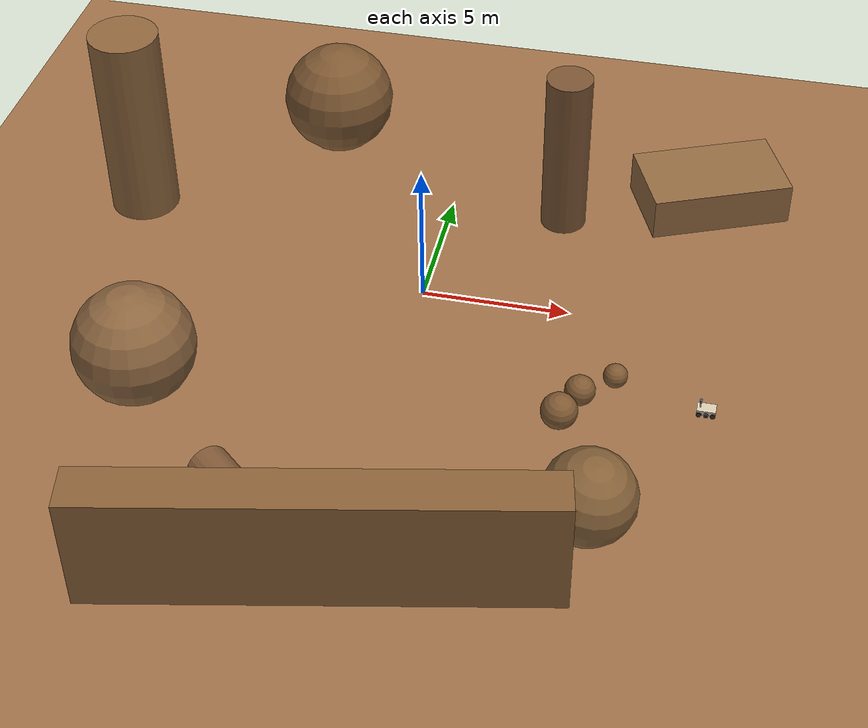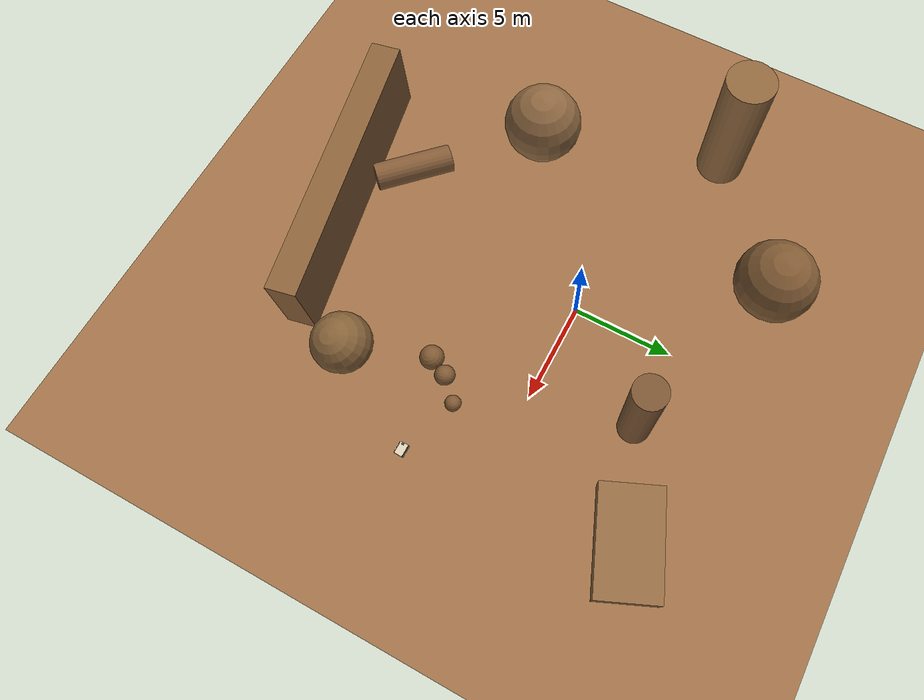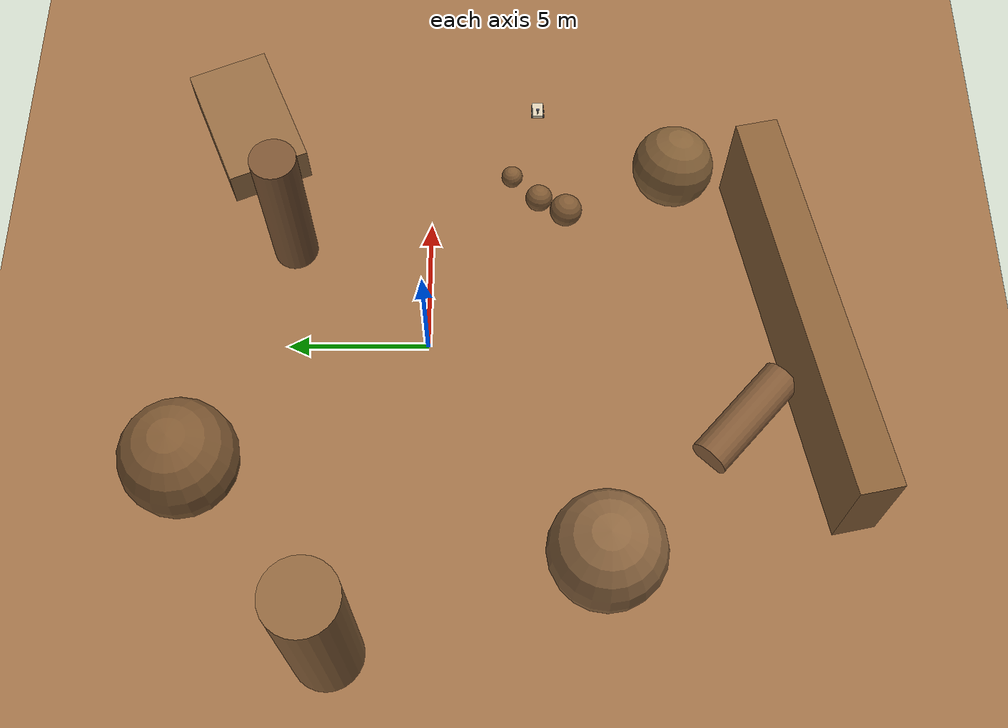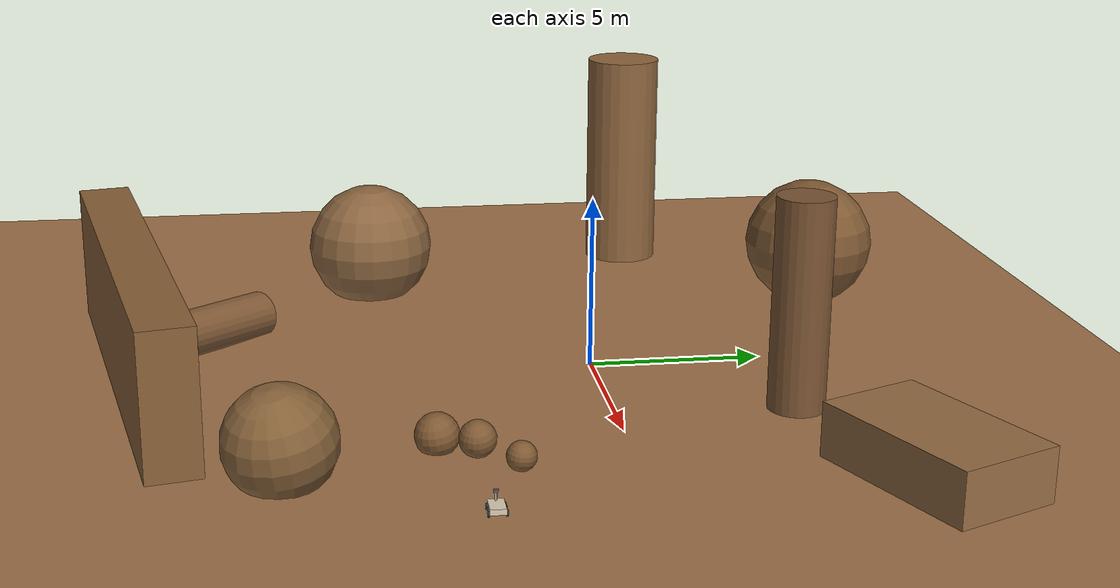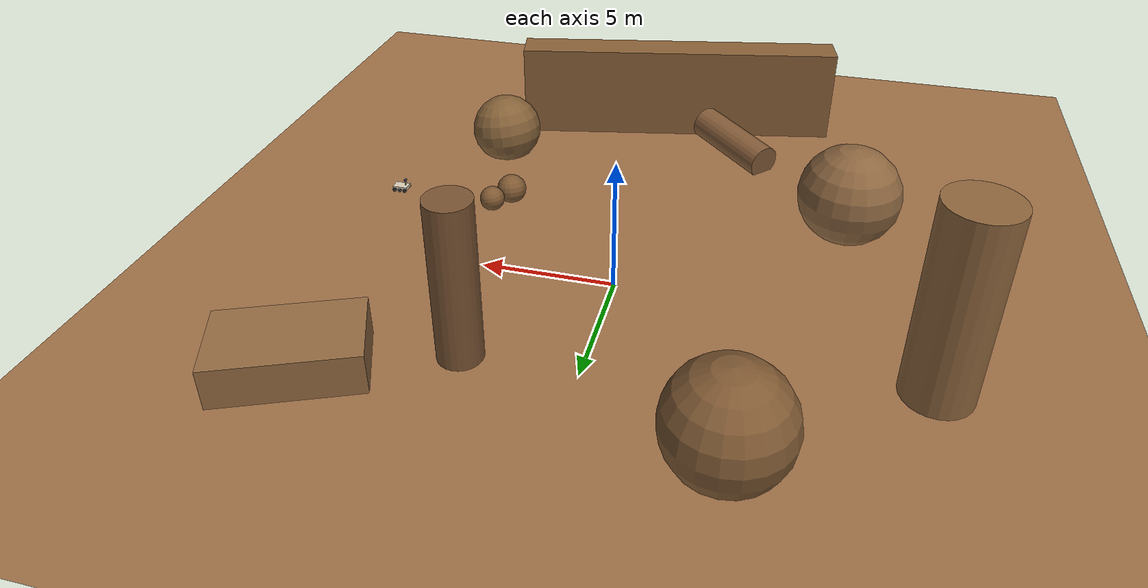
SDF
<sdf version="1.9">
 <world name="demo_world">
  <plugin filename="gz-sim-physics-system" name="gz::sim::systems::Physics">
   <dart><collision_detector>bullet</collision_detector></dart>
  </plugin>
  <plugin filename="gz-sim-user-commands-system" name="gz::sim::systems::UserCommands"/>
  <plugin filename="gz-sim-scene-broadcaster-system" name="gz::sim::systems::SceneBroadcaster"/>
  <plugin filename="gz-sim-sensors-system" name="gz::sim::systems::Sensors">
   <render_engine>ogre2</render_engine>
  </plugin>
  <plugin filename="gz-sim-contact-system" name="gz::sim::systems::Contact"/>
  <physics name="4ms" type="ignored">
   <max_step_size>0.004</max_step_size>
   <real_time_factor>1.0</real_time_factor>
  </physics>
  <light name="sun" type="directional">
   <pose>0 0 100 0 0.4 0.4</pose>
   <diffuse>0.9 0.8 0.7 1</diffuse>
   <specular>0.3 0.3 0.3 1</specular>
   <direction>-0.5 0.2 -0.8</direction>
  </light>
  <scene>
   <ambient>0.3 0.2 0.15 1</ambient>
   <background>0.55 0.35 0.2 1</background>
   <grid>false</grid>
   <shadows>true</shadows>
  </scene>
  <model name="ground_plane">
   <static>true</static>
   <link name="link">
    <collision name="collision">
     <geometry><plane><normal>0 0 1</normal><size>500 500</size></plane></geometry>
    </collision>
    <visual name="visual">
     <geometry><plane><normal>0 0 1</normal><size>500 500</size></plane></geometry>
     <material>
      <ambient>0.55 0.38 0.22 1</ambient>
      <diffuse>0.62 0.44 0.28 1</diffuse>
      <specular>0.05 0.05 0.05 1</specular>
     </material>
    </visual>
   </link>
  </model>
  <model name="boulder_1">
   <static>true</static>
   <pose>-8 -6 1.5 0 0 0</pose>
   <link name="link">
    <collision name="collision"><geometry><sphere><radius>2.0</radius></sphere></geometry></collision>
    <visual name="visual">
     <geometry><sphere><radius>2.0</radius></sphere></geometry>
     <material><ambient>0.5 0.35 0.2 1</ambient><diffuse>0.55 0.4 0.25 1</diffuse></material>
    </visual>
   </link>
  </model>
  <model name="boulder_2">
   <static>true</static>
   <pose>7 -9 1.0 0.2 0.1 0.5</pose>
   <link name="link">
    <collision name="collision"><geometry><sphere><radius>1.5</radius></sphere></geometry></collision>
    <visual name="visual">
     <geometry><sphere><radius>1.5</radius></sphere></geometry>
     <material><ambient>0.48 0.33 0.18 1</ambient><diffuse>0.52 0.38 0.22 1</diffuse></material>
    </visual>
   </link>
  </model>
  <model name="sphere_large">
   <static>true</static>
   <pose>-5 8 2.0 0 0 0</pose>
   <link name="link">
    <collision name="collision"><geometry><sphere><radius>2.0</radius></sphere></geometry></collision>
    <visual name="visual">
     <geometry><sphere><radius>2.0</radius></sphere></geometry>
     <material><ambient>0.45 0.30 0.18 1</ambient><diffuse>0.50 0.35 0.20 1</diffuse></material>
    </visual>
   </link>
  </model>
  <model name="spire">
   <static>true</static>
   <pose>4 5 3.0 0 0 0</pose>
   <link name="link">
    <collision name="collision">
     <geometry><cylinder><radius>0.8</radius><length>6.0</length></cylinder></geometry>
    </collision>
    <visual name="visual">
     <geometry><cylinder><radius>0.8</radius><length>6.0</length></cylinder></geometry>
     <material><ambient>0.42 0.28 0.16 1</ambient><diffuse>0.48 0.33 0.20 1</diffuse></material>
    </visual>
   </link>
  </model>
  <model name="pillar">
   <static>true</static>
   <pose>-11 3 3.5 0 0 0</pose>
   <link name="link">
    <collision name="collision">
     <geometry><cylinder><radius>1.2</radius><length>7.0</length></cylinder></geometry>
    </collision>
    <visual name="visual">
     <geometry><cylinder><radius>1.2</radius><length>7.0</length></cylinder></geometry>
     <material><ambient>0.50 0.34 0.20 1</ambient><diffuse>0.56 0.40 0.24 1</diffuse></material>
    </visual>
   </link>
  </model>
  <model name="slab">
   <static>true</static>
   <pose>9 7 0.75 0 0 0.4</pose>
   <link name="link">
    <collision name="collision"><geometry><box><size>5.0 3.0 1.5</size></box></geometry></collision>
    <visual name="visual">
     <geometry><box><size>5.0 3.0 1.5</size></box></geometry>
     <material><ambient>0.52 0.36 0.22 1</ambient><diffuse>0.58 0.42 0.26 1</diffuse></material>
    </visual>
   </link>
  </model>
  <model name="fallen_cylinder">
   <static>true</static>
   <pose>-3 -11 0.6 1.5 0.3 0.8</pose>
   <link name="link">
    <collision name="collision">
     <geometry><cylinder><radius>0.7</radius><length>4.0</length></cylinder></geometry>
    </collision>
    <visual name="visual">
     <geometry><cylinder><radius>0.7</radius><length>4.0</length></cylinder></geometry>
     <material><ambient>0.46 0.31 0.18 1</ambient><diffuse>0.52 0.36 0.22 1</diffuse></material>
    </visual>
   </link>
  </model>
  <model name="rock_wall">
   <static>true</static>
   <pose>0 -13 2.0 0 0 0.2</pose>
   <link name="link">
    <collision name="collision"><geometry><box><size>14.0 1.5 4.0</size></box></geometry></collision>
    <visual name="visual">
     <geometry><box><size>14.0 1.5 4.0</size></box></geometry>
     <material><ambient>0.48 0.32 0.18 1</ambient><diffuse>0.54 0.38 0.22 1</diffuse></material>
    </visual>
   </link>
  </model>
  <model name="small_rock_1">
   <static>true</static>
   <pose>6 -4 0.4 0.1 0.2 0.0</pose>
   <link name="link">
    <collision name="collision"><geometry><sphere><radius>0.5</radius></sphere></geometry></collision>
    <visual name="visual">
     <geometry><sphere><radius>0.5</radius></sphere></geometry>
     <material><ambient>0.44 0.30 0.17 1</ambient><diffuse>0.50 0.35 0.20 1</diffuse></material>
    </visual>
   </link>
  </model>
  <model name="small_rock_2">
   <static>true</static>
   <pose>7 -3 0.3 0.0 0.1 1.0</pose>
   <link name="link">
    <collision name="collision"><geometry><sphere><radius>0.4</radius></sphere></geometry></collision>
    <visual name="visual">
     <geometry><sphere><radius>0.4</radius></sphere></geometry>
     <material><ambient>0.44 0.30 0.17 1</ambient><diffuse>0.50 0.35 0.20 1</diffuse></material>
    </visual>
   </link>
  </model>
  <model name="small_rock_3">
   <static>true</static>
   <pose>5.5 -5 0.35 0.2 0.0 0.5</pose>
   <link name="link">
    <collision name="collision"><geometry><sphere><radius>0.6</radius></sphere></geometry></collision>
    <visual name="visual">
     <geometry><sphere><radius>0.6</radius></sphere></geometry>
     <material><ambient>0.44 0.30 0.17 1</ambient><diffuse>0.50 0.35 0.20 1</diffuse></material>
    </visual>
   </link>
  </model>
  <include><uri>model://mars_rover</uri><name>mars_rover</name><pose>10 -4 0.3 0 0 3.14159</pose></include>
 </world>
</sdf>

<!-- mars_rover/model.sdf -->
<sdf version="1.9">
  <model name="mars_rover">

    <!-- ── Chassis / Body ───────────────────────────────────────────────── -->
    <link name="base_link">
      <pose>0 0 0.075 0 0 0</pose>
      <inertial>
        <mass>8.0</mass>
        <inertia>
          <ixx>0.084</ixx>
          <iyy>0.258</iyy>
          <izz>0.320</izz>
          <ixy>0</ixy><ixz>0</ixz><iyz>0</iyz>
        </inertia>
      </inertial>
      <collision name="chassis_collision">
        <geometry>
          <box><size>0.6 0.4 0.15</size></box>
        </geometry>
        <surface>
          <friction>
            <ode><mu>0.8</mu><mu2>0.8</mu2></ode>
          </friction>
        </surface>
      </collision>
      <visual name="chassis_visual">
        <geometry>
          <box><size>0.6 0.4 0.15</size></box>
        </geometry>
        <material>
          <ambient>0.85 0.8 0.7 1</ambient>
          <diffuse>0.85 0.8 0.7 1</diffuse>
          <specular>0.15 0.15 0.15 1</specular>
        </material>
      </visual>

      <!-- 360 LiDAR sensor on top of body -->
      <sensor name="lidar_360" type="gpu_lidar">
        <pose>0 0 0.12 0 0 0</pose>
        <topic>rover_lidar</topic>
        <update_rate>5</update_rate>
        <lidar>
          <scan>
            <horizontal>
              <samples>360</samples>
              <resolution>1</resolution>
              <min_angle>-3.14159</min_angle>
              <max_angle>3.14159</max_angle>
            </horizontal>
            <vertical>
              <samples>1</samples>
              <resolution>1</resolution>
              <min_angle>0</min_angle>
              <max_angle>0</max_angle>
            </vertical>
          </scan>
          <range>
            <min>0.15</min>
            <max>12.0</max>
            <resolution>0.01</resolution>
          </range>
        </lidar>
        <always_on>true</always_on>
        <visualize>false</visualize>
      </sensor>
    </link>

    <!-- ── Instrument Mast ──────────────────────────────────────────────── -->
    <link name="mast_link">
      <pose>0.2 0 0.225 0 0 0</pose>
      <inertial>
        <mass>0.3</mass>
        <inertia>
          <ixx>0.00250</ixx><iyy>0.00250</iyy><izz>0.000050</izz>
          <ixy>0</ixy><ixz>0</ixz><iyz>0</iyz>
        </inertia>
      </inertial>
      <visual name="mast_visual">
        <pose>0 0 0 0 0 0</pose>
        <geometry>
          <cylinder>
            <radius>0.025</radius>
            <length>0.3</length>
          </cylinder>
        </geometry>
        <material>
          <ambient>0.75 0.7 0.6 1</ambient>
          <diffuse>0.75 0.7 0.6 1</diffuse>
        </material>
      </visual>
    </link>
    <joint name="mast_joint" type="fixed">
      <parent>base_link</parent>
      <child>mast_link</child>
    </joint>

    <!-- ── Camera Head on Mast ──────────────────────────────────────────── -->
    <link name="camera_head_link">
      <pose>0.2 0 0.4 0 0 0</pose>
      <inertial>
        <mass>0.1</mass>
        <inertia>
          <ixx>0.000017</ixx><iyy>0.000017</iyy><izz>0.000017</izz>
          <ixy>0</ixy><ixz>0</ixz><iyz>0</iyz>
        </inertia>
      </inertial>
      <visual name="head_visual">
        <geometry>
          <box><size>0.07 0.12 0.07</size></box>
        </geometry>
        <material>
          <ambient>0.3 0.3 0.4 1</ambient>
          <diffuse>0.35 0.35 0.45 1</diffuse>
        </material>
      </visual>
    </link>
    <joint name="camera_head_joint" type="fixed">
      <parent>base_link</parent>
      <child>camera_head_link</child>
    </joint>

    <!-- Front-Left Wheel -->
    <link name="front_left_wheel">
      <pose>0.22 0.22 0.005 1.5708 0 0</pose>
      <inertial>
        <mass>0.5</mass>
        <inertia>
          <ixx>0.000820</ixx><iyy>0.000820</iyy><izz>0.001600</izz>
          <ixy>0</ixy><ixz>0</ixz><iyz>0</iyz>
        </inertia>
      </inertial>
      <collision name="collision">
        <geometry><cylinder><radius>0.08</radius><length>0.05</length></cylinder></geometry>
        <surface><friction><ode><mu>1.2</mu><mu2>1.2</mu2></ode></friction></surface>
      </collision>
      <visual name="visual">
        <geometry><cylinder><radius>0.08</radius><length>0.05</length></cylinder></geometry>
        <material><ambient>0.15 0.15 0.15 1</ambient><diffuse>0.2 0.2 0.2 1</diffuse></material>
      </visual>
    </link>
    <joint name="front_left_wheel_joint" type="revolute">
      <parent>base_link</parent>
      <child>front_left_wheel</child>
      <axis>
        <xyz expressed_in="__model__">0 1 0</xyz>
        <dynamics><damping>0.005</damping><friction>0.01</friction></dynamics>
        <limit><lower>-1e+16</lower><upper>1e+16</upper></limit>
      </axis>
    </joint>

    <!-- Front-Right Wheel -->
    <link name="front_right_wheel">
      <pose>0.22 -0.22 0.005 1.5708 0 0</pose>
      <inertial>
        <mass>0.5</mass>
        <inertia>
          <ixx>0.000820</ixx><iyy>0.000820</iyy><izz>0.001600</izz>
          <ixy>0</ixy><ixz>0</ixz><iyz>0</iyz>
        </inertia>
      </inertial>
      <collision name="collision">
        <geometry><cylinder><radius>0.08</radius><length>0.05</length></cylinder></geometry>
        <surface><friction><ode><mu>1.2</mu><mu2>1.2</mu2></ode></friction></surface>
      </collision>
      <visual name="visual">
        <geometry><cylinder><radius>0.08</radius><length>0.05</length></cylinder></geometry>
        <material><ambient>0.15 0.15 0.15 1</ambient><diffuse>0.2 0.2 0.2 1</diffuse></material>
      </visual>
    </link>
    <joint name="front_right_wheel_joint" type="revolute">
      <parent>base_link</parent>
      <child>front_right_wheel</child>
      <axis>
        <xyz expressed_in="__model__">0 1 0</xyz>
        <dynamics><damping>0.005</damping><friction>0.01</friction></dynamics>
        <limit><lower>-1e+16</lower><upper>1e+16</upper></limit>
      </axis>
    </joint>

    <!-- Mid-Left Wheel (driven by DiffDrive) -->
    <link name="left_mid_wheel">
      <pose>0.0 0.22 0.005 1.5708 0 0</pose>
      <inertial>
        <mass>0.5</mass>
        <inertia>
          <ixx>0.000820</ixx><iyy>0.000820</iyy><izz>0.001600</izz>
          <ixy>0</ixy><ixz>0</ixz><iyz>0</iyz>
        </inertia>
      </inertial>
      <collision name="collision">
        <geometry><cylinder><radius>0.08</radius><length>0.05</length></cylinder></geometry>
        <surface><friction><ode><mu>1.5</mu><mu2>1.5</mu2></ode></friction></surface>
      </collision>
      <visual name="visual">
        <geometry><cylinder><radius>0.08</radius><length>0.05</length></cylinder></geometry>
        <material><ambient>0.1 0.1 0.1 1</ambient><diffuse>0.15 0.15 0.15 1</diffuse></material>
      </visual>
    </link>
    <joint name="left_mid_wheel_joint" type="revolute">
      <parent>base_link</parent>
      <child>left_mid_wheel</child>
      <axis>
        <xyz expressed_in="__model__">0 1 0</xyz>
        <dynamics><damping>0.005</damping><friction>0.01</friction></dynamics>
        <limit><lower>-1e+16</lower><upper>1e+16</upper></limit>
      </axis>
    </joint>

    <!-- Mid-Right Wheel (driven by DiffDrive) -->
    <link name="right_mid_wheel">
      <pose>0.0 -0.22 0.005 1.5708 0 0</pose>
      <inertial>
        <mass>0.5</mass>
        <inertia>
          <ixx>0.000820</ixx><iyy>0.000820</iyy><izz>0.001600</izz>
          <ixy>0</ixy><ixz>0</ixz><iyz>0</iyz>
        </inertia>
      </inertial>
      <collision name="collision">
        <geometry><cylinder><radius>0.08</radius><length>0.05</length></cylinder></geometry>
        <surface><friction><ode><mu>1.5</mu><mu2>1.5</mu2></ode></friction></surface>
      </collision>
      <visual name="visual">
        <geometry><cylinder><radius>0.08</radius><length>0.05</length></cylinder></geometry>
        <material><ambient>0.1 0.1 0.1 1</ambient><diffuse>0.15 0.15 0.15 1</diffuse></material>
      </visual>
    </link>
    <joint name="right_mid_wheel_joint" type="revolute">
      <parent>base_link</parent>
      <child>right_mid_wheel</child>
      <axis>
        <xyz expressed_in="__model__">0 1 0</xyz>
        <dynamics><damping>0.005</damping><friction>0.01</friction></dynamics>
        <limit><lower>-1e+16</lower><upper>1e+16</upper></limit>
      </axis>
    </joint>

    <!-- Rear-Left Wheel -->
    <link name="rear_left_wheel">
      <pose>-0.22 0.22 0.005 1.5708 0 0</pose>
      <inertial>
        <mass>0.5</mass>
        <inertia>
          <ixx>0.000820</ixx><iyy>0.000820</iyy><izz>0.001600</izz>
          <ixy>0</ixy><ixz>0</ixz><iyz>0</iyz>
        </inertia>
      </inertial>
      <collision name="collision">
        <geometry><cylinder><radius>0.08</radius><length>0.05</length></cylinder></geometry>
        <surface><friction><ode><mu>1.2</mu><mu2>1.2</mu2></ode></friction></surface>
      </collision>
      <visual name="visual">
        <geometry><cylinder><radius>0.08</radius><length>0.05</length></cylinder></geometry>
        <material><ambient>0.15 0.15 0.15 1</ambient><diffuse>0.2 0.2 0.2 1</diffuse></material>
      </visual>
    </link>
    <joint name="rear_left_wheel_joint" type="revolute">
      <parent>base_link</parent>
      <child>rear_left_wheel</child>
      <axis>
        <xyz expressed_in="__model__">0 1 0</xyz>
        <dynamics><damping>0.005</damping><friction>0.01</friction></dynamics>
        <limit><lower>-1e+16</lower><upper>1e+16</upper></limit>
      </axis>
    </joint>

    <!-- Rear-Right Wheel -->
    <link name="rear_right_wheel">
      <pose>-0.22 -0.22 0.005 1.5708 0 0</pose>
      <inertial>
        <mass>0.5</mass>
        <inertia>
          <ixx>0.000820</ixx><iyy>0.000820</iyy><izz>0.001600</izz>
          <ixy>0</ixy><ixz>0</ixz><iyz>0</iyz>
        </inertia>
      </inertial>
      <collision name="collision">
        <geometry><cylinder><radius>0.08</radius><length>0.05</length></cylinder></geometry>
        <surface><friction><ode><mu>1.2</mu><mu2>1.2</mu2></ode></friction></surface>
      </collision>
      <visual name="visual">
        <geometry><cylinder><radius>0.08</radius><length>0.05</length></cylinder></geometry>
        <material><ambient>0.15 0.15 0.15 1</ambient><diffuse>0.2 0.2 0.2 1</diffuse></material>
      </visual>
    </link>
    <joint name="rear_right_wheel_joint" type="revolute">
      <parent>base_link</parent>
      <child>rear_right_wheel</child>
      <axis>
        <xyz expressed_in="__model__">0 1 0</xyz>
        <dynamics><damping>0.005</damping><friction>0.01</friction></dynamics>
        <limit><lower>-1e+16</lower><upper>1e+16</upper></limit>
      </axis>
    </joint>

    <!-- ── Plugins ───────────────────────────────────────────────────────── -->

    <!-- DiffDrive on mid wheel pair -->
    <plugin filename="gz-sim-diff-drive-system"
            name="gz::sim::systems::DiffDrive">
      <left_joint>left_mid_wheel_joint</left_joint>
      <right_joint>right_mid_wheel_joint</right_joint>
      <wheel_separation>0.44</wheel_separation>
      <wheel_radius>0.08</wheel_radius>
      <topic>cmd_vel</topic>
      <odom_topic>rover_odom</odom_topic>
      <odom_publish_frequency>10</odom_publish_frequency>
      <frame_id>odom</frame_id>
      <child_frame_id>base_link</child_frame_id>
      <min_velocity>-0.6</min_velocity>
      <max_velocity>0.6</max_velocity>
      <min_acceleration>-1.5</min_acceleration>
      <max_acceleration>1.5</max_acceleration>
    </plugin>

    <!-- DiffDrive on front wheel pair — 6WD: same cmd_vel, separate odom topic -->
    <plugin filename="gz-sim-diff-drive-system"
            name="gz::sim::systems::DiffDrive">
      <left_joint>front_left_wheel_joint</left_joint>
      <right_joint>front_right_wheel_joint</right_joint>
      <wheel_separation>0.44</wheel_separation>
      <wheel_radius>0.08</wheel_radius>
      <topic>cmd_vel</topic>
      <odom_topic>rover_odom_front</odom_topic>
      <odom_publish_frequency>0</odom_publish_frequency>
      <frame_id>odom</frame_id>
      <child_frame_id>base_link_front</child_frame_id>
      <min_velocity>-0.6</min_velocity>
      <max_velocity>0.6</max_velocity>
      <min_acceleration>-1.5</min_acceleration>
      <max_acceleration>1.5</max_acceleration>
    </plugin>

    <!-- DiffDrive on rear wheel pair — 6WD: same cmd_vel, separate odom topic -->
    <plugin filename="gz-sim-diff-drive-system"
            name="gz::sim::systems::DiffDrive">
      <left_joint>rear_left_wheel_joint</left_joint>
      <right_joint>rear_right_wheel_joint</right_joint>
      <wheel_separation>0.44</wheel_separation>
      <wheel_radius>0.08</wheel_radius>
      <topic>cmd_vel</topic>
      <odom_topic>rover_odom_rear</odom_topic>
      <odom_publish_frequency>0</odom_publish_frequency>
      <frame_id>odom</frame_id>
      <child_frame_id>base_link_rear</child_frame_id>
      <min_velocity>-0.6</min_velocity>
      <max_velocity>0.6</max_velocity>
      <min_acceleration>-1.5</min_acceleration>
      <max_acceleration>1.5</max_acceleration>
    </plugin>

    <!-- Joint state publisher -->
    <plugin filename="gz-sim-joint-state-publisher-system"
            name="gz::sim::systems::JointStatePublisher">
      <topic>rover_joint_states</topic>
      <joint_name>front_left_wheel_joint</joint_name>
      <joint_name>front_right_wheel_joint</joint_name>
      <joint_name>left_mid_wheel_joint</joint_name>
      <joint_name>right_mid_wheel_joint</joint_name>
      <joint_name>rear_left_wheel_joint</joint_name>
      <joint_name>rear_right_wheel_joint</joint_name>
    </plugin>

  </model>
</sdf>
